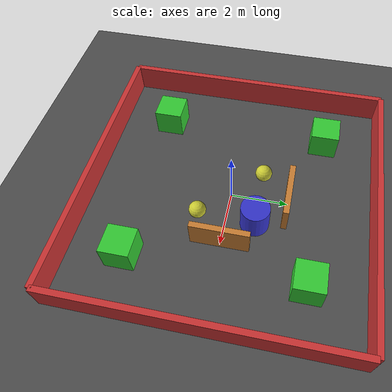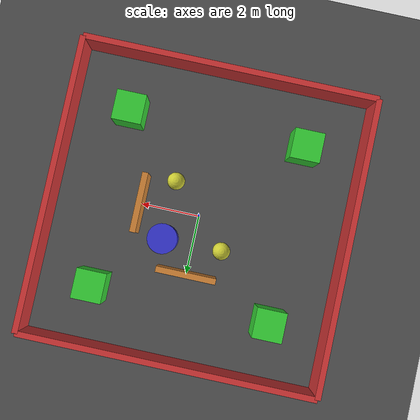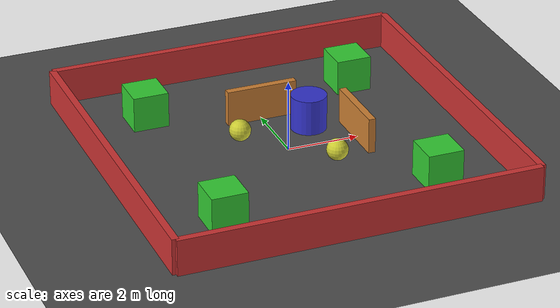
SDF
<?xml version="1.0" ?>
<sdf version='1.8'>
  <world name='mapping_test_world'>

    <physics name='1ms' type='ignored'>
      <max_step_size>0.001</max_step_size>
      <real_time_factor>1</real_time_factor>
    </physics>

    <plugin
      filename="gz-sim-physics-system"
      name="gz::sim::systems::Physics">
    </plugin>
    <plugin
      filename="gz-sim-user-commands-system"
      name="gz::sim::systems::UserCommands">
    </plugin>
    <plugin
      filename="gz-sim-scene-broadcaster-system"
      name="gz::sim::systems::SceneBroadcaster">
    </plugin>
    <plugin
      filename="gz-sim-sensors-system"
      name="gz::sim::systems::Sensors">
      <render_engine>ogre2</render_engine>
    </plugin>

    <light name='sun' type='directional'>
      <pose>0 0 10 0 -0 0</pose>
      <cast_shadows>true</cast_shadows>
      <intensity>1</intensity>
      <direction>-0.5 0.1 -0.9</direction>
      <diffuse>0.8 0.8 0.8 1</diffuse>
      <specular>0.2 0.2 0.2 1</specular>
      <attenuation>
        <range>1000</range>
        <linear>0.01</linear>
        <constant>0.9</constant>
        <quadratic>0.001</quadratic>
      </attenuation>
    </light>

    <!-- Ground Plane -->
    <model name='ground_plane'>
      <static>true</static>
      <link name='link'>
        <collision name='collision'>
          <geometry>
            <plane>
              <normal>0 0 1</normal>
              <size>20 20</size>
            </plane>
          </geometry>
          <surface>
            <friction>
              <ode>
                <mu>100</mu>
                <mu2>50</mu2>
              </ode>
            </friction>
          </surface>
        </collision>
        <visual name='visual'>
          <geometry>
            <plane>
              <normal>0 0 1</normal>
              <size>20 20</size>
            </plane>
          </geometry>
          <material>
            <ambient>0.3 0.3 0.3 1</ambient>
            <diffuse>0.3 0.3 0.3 1</diffuse>
            <specular>0.1 0.1 0.1 1</specular>
          </material>
        </visual>
      </link>
    </model>

    <!-- Boundary Walls -->

    <!-- North Wall -->
    <model name='north_wall'>
      <static>true</static>
      <link name='link'>
        <collision name='collision'>
          <geometry>
            <box>
              <size>10 0.2 1</size>
            </box>
          </geometry>
        </collision>
        <visual name='visual'>
          <geometry>
            <box>
              <size>10 0.2 1</size>
            </box>
          </geometry>
          <material>
            <ambient>0.8 0.2 0.2 1</ambient>
            <diffuse>0.8 0.2 0.2 1</diffuse>
            <specular>0.1 0.1 0.1 1</specular>
          </material>
        </visual>
        <pose>0 5 0.5 0 0 0</pose>
      </link>
    </model>

    <!-- South Wall -->
    <model name='south_wall'>
      <static>true</static>
      <link name='link'>
        <collision name='collision'>
          <geometry>
            <box>
              <size>10 0.2 1</size>
            </box>
          </geometry>
        </collision>
        <visual name='visual'>
          <geometry>
            <box>
              <size>10 0.2 1</size>
            </box>
          </geometry>
          <material>
            <ambient>0.8 0.2 0.2 1</ambient>
            <diffuse>0.8 0.2 0.2 1</diffuse>
            <specular>0.1 0.1 0.1 1</specular>
          </material>
        </visual>
        <pose>0 -5 0.5 0 0 0</pose>
      </link>
    </model>

    <!-- East Wall -->
    <model name='east_wall'>
      <static>true</static>
      <link name='link'>
        <collision name='collision'>
          <geometry>
            <box>
              <size>0.2 10 1</size>
            </box>
          </geometry>
        </collision>
        <visual name='visual'>
          <geometry>
            <box>
              <size>0.2 10 1</size>
            </box>
          </geometry>
          <material>
            <ambient>0.8 0.2 0.2 1</ambient>
            <diffuse>0.8 0.2 0.2 1</diffuse>
            <specular>0.1 0.1 0.1 1</specular>
          </material>
        </visual>
        <pose>5 0 0.5 0 0 0</pose>
      </link>
    </model>

    <!-- West Wall -->
    <model name='west_wall'>
      <static>true</static>
      <link name='link'>
        <collision name='collision'>
          <geometry>
            <box>
              <size>0.2 10 1</size>
            </box>
          </geometry>
        </collision>
        <visual name='visual'>
          <geometry>
            <box>
              <size>0.2 10 1</size>
            </box>
          </geometry>
          <material>
            <ambient>0.8 0.2 0.2 1</ambient>
            <diffuse>0.8 0.2 0.2 1</diffuse>
            <specular>0.1 0.1 0.1 1</specular>
          </material>
        </visual>
        <pose>-5 0 0.5 0 0 0</pose>
      </link>
    </model>

    <!-- Obstacles -->

    <!-- Central Obstacle -->
    <model name='central_obstacle'>
      <static>true</static>
      <link name='link'>
        <collision name='collision'>
          <geometry>
            <cylinder>
              <radius>0.5</radius>
              <length>1</length>
            </cylinder>
          </geometry>
        </collision>
        <visual name='visual'>
          <geometry>
            <cylinder>
              <radius>0.5</radius>
              <length>1</length>
            </cylinder>
          </geometry>
          <material>
            <ambient>0.2 0.2 0.8 1</ambient>
            <diffuse>0.2 0.2 0.8 1</diffuse>
            <specular>0.1 0.1 0.1 1</specular>
          </material>
        </visual>
        <pose>1 1 0.5 0 0 0</pose>
      </link>
    </model>

    <!-- Corner Obstacles -->
    <model name='corner_obstacle_1'>
      <static>true</static>
      <link name='link'>
        <collision name='collision'>
          <geometry>
            <box>
              <size>1 1 1</size>
            </box>
          </geometry>
        </collision>
        <visual name='visual'>
          <geometry>
            <box>
              <size>1 1 1</size>
            </box>
          </geometry>
          <material>
            <ambient>0.2 0.8 0.2 1</ambient>
            <diffuse>0.2 0.8 0.2 1</diffuse>
            <specular>0.1 0.1 0.1 1</specular>
          </material>
        </visual>
        <pose>3 3 0.5 0 0 0</pose>
      </link>
    </model>

    <model name='corner_obstacle_2'>
      <static>true</static>
      <link name='link'>
        <collision name='collision'>
          <geometry>
            <box>
              <size>1 1 1</size>
            </box>
          </geometry>
        </collision>
        <visual name='visual'>
          <geometry>
            <box>
              <size>1 1 1</size>
            </box>
          </geometry>
          <material>
            <ambient>0.2 0.8 0.2 1</ambient>
            <diffuse>0.2 0.8 0.2 1</diffuse>
            <specular>0.1 0.1 0.1 1</specular>
          </material>
        </visual>
        <pose>-3 3 0.5 0 0 0</pose>
      </link>
    </model>

    <model name='corner_obstacle_3'>
      <static>true</static>
      <link name='link'>
        <collision name='collision'>
          <geometry>
            <box>
              <size>1 1 1</size>
            </box>
          </geometry>
        </collision>
        <visual name='visual'>
          <geometry>
            <box>
              <size>1 1 1</size>
            </box>
          </geometry>
          <material>
            <ambient>0.2 0.8 0.2 1</ambient>
            <diffuse>0.2 0.8 0.2 1</diffuse>
            <specular>0.1 0.1 0.1 1</specular>
          </material>
        </visual>
        <pose>3 -3 0.5 0 0 0</pose>
      </link>
    </model>

    <model name='corner_obstacle_4'>
      <static>true</static>
      <link name='link'>
        <collision name='collision'>
          <geometry>
            <box>
              <size>1 1 1</size>
            </box>
          </geometry>
        </collision>
        <visual name='visual'>
          <geometry>
            <box>
              <size>1 1 1</size>
            </box>
          </geometry>
          <material>
            <ambient>0.2 0.8 0.2 1</ambient>
            <diffuse>0.2 0.8 0.2 1</diffuse>
            <specular>0.1 0.1 0.1 1</specular>
          </material>
        </visual>
        <pose>-3 -3 0.5 0 0 0</pose>
      </link>
    </model>

    <!-- Wall-like obstacles for corridor testing -->
    <model name='wall_obstacle_1'>
      <static>true</static>
      <link name='link'>
        <collision name='collision'>
          <geometry>
            <box>
              <size>0.2 2 1</size>
            </box>
          </geometry>
        </collision>
        <visual name='visual'>
          <geometry>
            <box>
              <size>0.2 2 1</size>
            </box>
          </geometry>
          <material>
            <ambient>0.8 0.5 0.2 1</ambient>
            <diffuse>0.8 0.5 0.2 1</diffuse>
            <specular>0.1 0.1 0.1 1</specular>
          </material>
        </visual>
        <pose>2 0 0.5 0 0 0</pose>
      </link>
    </model>

    <model name='wall_obstacle_2'>
      <static>true</static>
      <link name='link'>
        <collision name='collision'>
          <geometry>
            <box>
              <size>2 0.2 1</size>
            </box>
          </geometry>
        </collision>
        <visual name='visual'>
          <geometry>
            <box>
              <size>2 0.2 1</size>
            </box>
          </geometry>
          <material>
            <ambient>0.8 0.5 0.2 1</ambient>
            <diffuse>0.8 0.5 0.2 1</diffuse>
            <specular>0.1 0.1 0.1 1</specular>
          </material>
        </visual>
        <pose>0 2 0.5 0 0 0</pose>
      </link>
    </model>

    <!-- Small obstacles for detailed mapping -->
    <model name='small_obstacle_1'>
      <static>true</static>
      <link name='link'>
        <collision name='collision'>
          <geometry>
            <sphere>
              <radius>0.3</radius>
            </sphere>
          </geometry>
        </collision>
        <visual name='visual'>
          <geometry>
            <sphere>
              <radius>0.3</radius>
            </sphere>
          </geometry>
          <material>
            <ambient>0.8 0.8 0.2 1</ambient>
            <diffuse>0.8 0.8 0.2 1</diffuse>
            <specular>0.1 0.1 0.1 1</specular>
          </material>
        </visual>
        <pose>1 -1 0.3 0 0 0</pose>
      </link>
    </model>

    <model name='small_obstacle_2'>
      <static>true</static>
      <link name='link'>
        <collision name='collision'>
          <geometry>
            <sphere>
              <radius>0.3</radius>
            </sphere>
          </geometry>
        </collision>
        <visual name='visual'>
          <geometry>
            <sphere>
              <radius>0.3</radius>
            </sphere>
          </geometry>
          <material>
            <ambient>0.8 0.8 0.2 1</ambient>
            <diffuse>0.8 0.8 0.2 1</diffuse>
            <specular>0.1 0.1 0.1 1</specular>
          </material>
        </visual>
        <pose>-1 1 0.3 0 0 0</pose>
      </link>
    </model>

  </world>
</sdf>
